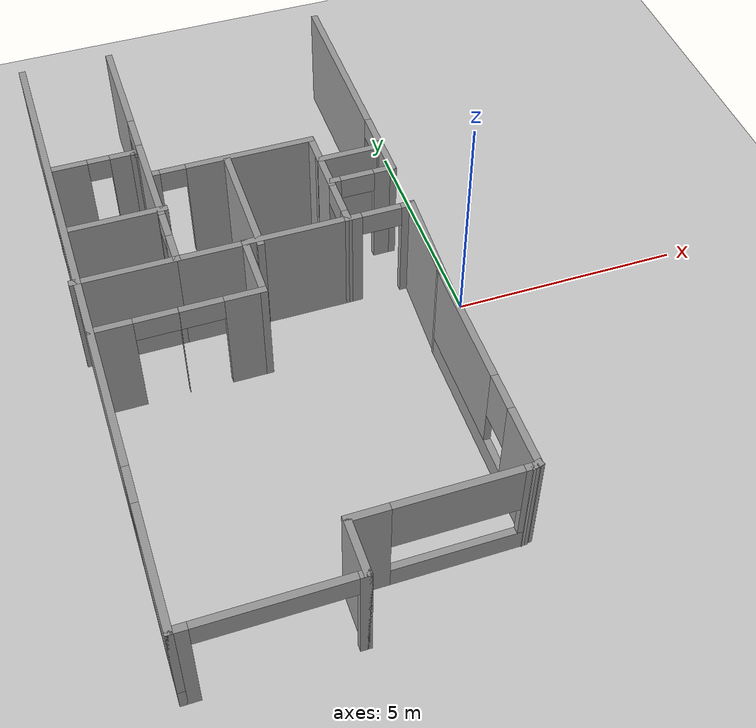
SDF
<sdf version="1.7">
 <world name="default">
  <model name="ground_plane">
   <static>1</static>
   <link name="link">
    <collision name="collision">
     <geometry><plane><normal>0 0 1</normal><size>100 100</size></plane></geometry>
     <surface>
      <contact><collide_bitmask>65535</collide_bitmask></contact>
      <friction><ode><mu>100</mu><mu2>50</mu2></ode></friction>
     </surface>
    </collision>
    <visual name="visual">
     <cast_shadows>0</cast_shadows>
     <geometry><plane><normal>0 0 1</normal><size>100 100</size></plane></geometry>
     <material>
      <script><uri>file://media/materials/scripts/gazebo.material</uri><name>Gazebo/Grey</name></script>
     </material>
    </visual>
   </link>
  </model>
  <model name="Floorplan7">
   <pose>0.685617 0.398656 0 0 -0 0</pose>
   <link name="Wall_10">
    <collision name="Wall_10_Collision">
     <geometry><box><size>1.25 0.15 2.5</size></box></geometry>
     <pose>0 0 1.25 0 -0 0</pose>
    </collision>
    <visual name="Wall_10_Visual">
     <pose>0 0 1.25 0 -0 0</pose>
     <geometry><box><size>1.25 0.15 2.5</size></box></geometry>
     <material>
      <script><uri>file://media/materials/scripts/gazebo.material</uri><name>Gazebo/Grey</name></script>
      <ambient>1 1 1 1</ambient>
     </material>
     <meta><layer>0</layer></meta>
    </visual>
    <pose>-5.20802 -6.875 0 0 -0 1.5708</pose>
   </link>
   <link name="Wall_11">
    <pose>-3.53302 -6.325 0 0 -0 0</pose>
    <visual name="Wall_11_Visual_0">
     <pose>-1.31856 0 1.25 0 -0 0</pose>
     <geometry><box><size>0.862879 0.15 2.5</size></box></geometry>
     <material>
      <script><uri>file://media/materials/scripts/gazebo.material</uri><name>Gazebo/Grey</name></script>
      <ambient>1 1 1 1</ambient>
     </material>
     <meta><layer>0</layer></meta>
    </visual>
    <collision name="Wall_11_Collision_0">
     <geometry><box><size>0.862879 0.15 2.5</size></box></geometry>
     <pose>-1.31856 0 1.25 0 -0 0</pose>
    </collision>
    <visual name="Wall_11_Visual_1">
     <pose>0.43144 0 0.25 0 -0 0</pose>
     <geometry><box><size>2.63712 0.15 0.5</size></box></geometry>
     <material>
      <script><uri>file://media/materials/scripts/gazebo.material</uri><name>Gazebo/Grey</name></script>
      <ambient>1 1 1 1</ambient>
     </material>
     <meta><layer>0</layer></meta>
    </visual>
    <collision name="Wall_11_Collision_1">
     <geometry><box><size>2.63712 0.15 0.5</size></box></geometry>
     <pose>0.43144 0 0.25 0 -0 0</pose>
    </collision>
    <visual name="Wall_11_Visual_2">
     <pose>1.67426 0 1.5 0 -0 0</pose>
     <geometry><box><size>0.151472 0.15 2</size></box></geometry>
     <material>
      <script><uri>file://media/materials/scripts/gazebo.material</uri><name>Gazebo/Grey</name></script>
      <ambient>1 1 1 1</ambient>
     </material>
     <meta><layer>0</layer></meta>
    </visual>
    <collision name="Wall_11_Collision_2">
     <geometry><box><size>0.151472 0.15 2</size></box></geometry>
     <pose>1.67426 0 1.5 0 -0 0</pose>
    </collision>
    <visual name="Wall_11_Visual_3">
     <pose>0.355704 0 1.9 0 -0 0</pose>
     <geometry><box><size>2.48565 0.15 1.2</size></box></geometry>
     <material>
      <script><uri>file://media/materials/scripts/gazebo.material</uri><name>Gazebo/Grey</name></script>
      <ambient>1 1 1 1</ambient>
     </material>
     <meta><layer>0</layer></meta>
    </visual>
    <collision name="Wall_11_Collision_3">
     <geometry><box><size>2.48565 0.15 1.2</size></box></geometry>
     <pose>0.355704 0 1.9 0 -0 0</pose>
    </collision>
   </link>
   <link name="Wall_12">
    <collision name="Wall_12_Collision">
     <geometry><box><size>0.25 0.15 2.5</size></box></geometry>
     <pose>0 0 1.25 0 -0 0</pose>
    </collision>
    <visual name="Wall_12_Visual">
     <pose>0 0 1.25 0 -0 0</pose>
     <geometry><box><size>0.25 0.15 2.5</size></box></geometry>
     <material>
      <script><uri>file://media/materials/scripts/gazebo.material</uri><name>Gazebo/Grey</name></script>
      <ambient>1 1 1 1</ambient>
     </material>
     <meta><layer>0</layer></meta>
    </visual>
    <pose>-1.80802 -6.325 0 0 -0 0</pose>
   </link>
   <link name="Wall_13">
    <collision name="Wall_13_Collision">
     <geometry><box><size>0.25 0.15 2.5</size></box></geometry>
     <pose>0 0 1.25 0 -0 0</pose>
    </collision>
    <visual name="Wall_13_Visual">
     <pose>0 0 1.25 0 -0 0</pose>
     <geometry><box><size>0.25 0.15 2.5</size></box></geometry>
     <material>
      <script><uri>file://media/materials/scripts/gazebo.material</uri><name>Gazebo/Grey</name></script>
      <ambient>1 1 1 1</ambient>
     </material>
     <meta><layer>0</layer></meta>
    </visual>
    <pose>-1.70972 -6.31206 0 0 -0 0.261799</pose>
   </link>
   <link name="Wall_14">
    <pose>-1.65681 -3.87627 0 0 -0 1.56889</pose>
    <visual name="Wall_14_Visual_0">
     <pose>-1.82183 0 1.25 0 -0 0</pose>
     <geometry><box><size>1.35207 0.15 2.5</size></box></geometry>
     <material>
      <script><uri>file://media/materials/scripts/gazebo.material</uri><name>Gazebo/Grey</name></script>
      <ambient>1 1 1 1</ambient>
     </material>
     <meta><layer>0</layer></meta>
    </visual>
    <collision name="Wall_14_Collision_0">
     <geometry><box><size>1.35207 0.15 2.5</size></box></geometry>
     <pose>-1.82183 0 1.25 0 -0 0</pose>
    </collision>
    <visual name="Wall_14_Visual_1">
     <pose>0.676036 0 0.25 0 -0 0</pose>
     <geometry><box><size>3.64367 0.15 0.5</size></box></geometry>
     <material>
      <script><uri>file://media/materials/scripts/gazebo.material</uri><name>Gazebo/Grey</name></script>
      <ambient>1 1 1 1</ambient>
     </material>
     <meta><layer>0</layer></meta>
    </visual>
    <collision name="Wall_14_Collision_1">
     <geometry><box><size>3.64367 0.15 0.5</size></box></geometry>
     <pose>0.676036 0 0.25 0 -0 0</pose>
    </collision>
    <visual name="Wall_14_Visual_2">
     <pose>1.07604 0 1.5 0 -0 0</pose>
     <geometry><box><size>2.84367 0.15 2</size></box></geometry>
     <material>
      <script><uri>file://media/materials/scripts/gazebo.material</uri><name>Gazebo/Grey</name></script>
      <ambient>1 1 1 1</ambient>
     </material>
     <meta><layer>0</layer></meta>
    </visual>
    <collision name="Wall_14_Collision_2">
     <geometry><box><size>2.84367 0.15 2</size></box></geometry>
     <pose>1.07604 0 1.5 0 -0 0</pose>
    </collision>
    <visual name="Wall_14_Visual_3">
     <pose>-0.745799 0 1.9 0 -0 0</pose>
     <geometry><box><size>0.8 0.15 1.2</size></box></geometry>
     <material>
      <script><uri>file://media/materials/scripts/gazebo.material</uri><name>Gazebo/Grey</name></script>
      <ambient>1 1 1 1</ambient>
     </material>
     <meta><layer>0</layer></meta>
    </visual>
    <collision name="Wall_14_Collision_3">
     <geometry><box><size>0.8 0.15 1.2</size></box></geometry>
     <pose>-0.745799 0 1.9 0 -0 0</pose>
    </collision>
   </link>
   <link name="Wall_18">
    <pose>-6.54918 3.98735 0 0 -0 -1.5708</pose>
    <visual name="Wall_18_Visual_0">
     <pose>-2.2619 0 1.25 0 -0 0</pose>
     <geometry><box><size>2.47621 0.15 2.5</size></box></geometry>
     <material>
      <script><uri>file://media/materials/scripts/gazebo.material</uri><name>Gazebo/Grey</name></script>
      <ambient>1 1 1 1</ambient>
     </material>
     <meta><layer>0</layer></meta>
    </visual>
    <collision name="Wall_18_Collision_0">
     <geometry><box><size>2.47621 0.15 2.5</size></box></geometry>
     <pose>-2.2619 0 1.25 0 -0 0</pose>
    </collision>
    <visual name="Wall_18_Visual_1">
     <pose>0.956775 0 1.25 0 -0 0</pose>
     <geometry><box><size>2.26902 0.15 2.5</size></box></geometry>
     <material>
      <script><uri>file://media/materials/scripts/gazebo.material</uri><name>Gazebo/Grey</name></script>
      <ambient>1 1 1 1</ambient>
     </material>
     <meta><layer>0</layer></meta>
    </visual>
    <collision name="Wall_18_Collision_1">
     <geometry><box><size>2.26902 0.15 2.5</size></box></geometry>
     <pose>0.956775 0 1.25 0 -0 0</pose>
    </collision>
    <visual name="Wall_18_Visual_2">
     <pose>3.11753 0 1.25 0 -0 0</pose>
     <geometry><box><size>0.764934 0.15 2.5</size></box></geometry>
     <material>
      <script><uri>file://media/materials/scripts/gazebo.material</uri><name>Gazebo/Grey</name></script>
      <ambient>1 1 1 1</ambient>
     </material>
     <meta><layer>0</layer></meta>
    </visual>
    <collision name="Wall_18_Collision_2">
     <geometry><box><size>0.764934 0.15 2.5</size></box></geometry>
     <pose>3.11753 0 1.25 0 -0 0</pose>
    </collision>
    <visual name="Wall_18_Visual_3">
     <pose>-0.600765 0 2.25 0 -0 0</pose>
     <geometry><box><size>0.846059 0.15 0.5</size></box></geometry>
     <material>
      <script><uri>file://media/materials/scripts/gazebo.material</uri><name>Gazebo/Grey</name></script>
      <ambient>1 1 1 1</ambient>
     </material>
     <meta><layer>0</layer></meta>
    </visual>
    <collision name="Wall_18_Collision_3">
     <geometry><box><size>0.846059 0.15 0.5</size></box></geometry>
     <pose>-0.600765 0 2.25 0 -0 0</pose>
    </collision>
    <visual name="Wall_18_Visual_4">
     <pose>2.41317 0 2.25 0 -0 0</pose>
     <geometry><box><size>0.643781 0.15 0.5</size></box></geometry>
     <material>
      <script><uri>file://media/materials/scripts/gazebo.material</uri><name>Gazebo/Grey</name></script>
      <ambient>1 1 1 1</ambient>
     </material>
     <meta><layer>0</layer></meta>
    </visual>
    <collision name="Wall_18_Collision_4">
     <geometry><box><size>0.643781 0.15 0.5</size></box></geometry>
     <pose>2.41317 0 2.25 0 -0 0</pose>
    </collision>
   </link>
   <link name="Wall_19">
    <collision name="Wall_19_Collision">
     <geometry><box><size>2.25 0.15 2.5</size></box></geometry>
     <pose>0 0 1.25 0 -0 0</pose>
    </collision>
    <visual name="Wall_19_Visual">
     <pose>0 0 1.25 0 -0 0</pose>
     <geometry><box><size>2.25 0.15 2.5</size></box></geometry>
     <material>
      <script><uri>file://media/materials/scripts/gazebo.material</uri><name>Gazebo/Grey</name></script>
      <ambient>1 1 1 1</ambient>
     </material>
     <meta><layer>0</layer></meta>
    </visual>
    <pose>-7.59918 0.562349 0 0 -0 3.14159</pose>
   </link>
   <link name="Wall_20">
    <collision name="Wall_20_Collision">
     <geometry><box><size>0.15 0.15 2.5</size></box></geometry>
     <pose>0 0 1.25 0 -0 0</pose>
    </collision>
    <visual name="Wall_20_Visual">
     <pose>0 0 1.25 0 -0 0</pose>
     <geometry><box><size>0.15 0.15 2.5</size></box></geometry>
     <material>
      <script><uri>file://media/materials/scripts/gazebo.material</uri><name>Gazebo/Grey</name></script>
      <ambient>1 1 1 1</ambient>
     </material>
     <meta><layer>0</layer></meta>
    </visual>
    <pose>-8.64918 0.562349 0 0 -0 0</pose>
   </link>
   <link name="Wall_22">
    <pose>-6.83525 -0.793988 0 0 -0 0</pose>
    <visual name="Wall_22_Visual_0">
     <pose>-1.33924 0 1.25 0 -0 0</pose>
     <geometry><box><size>0.881865 0.15 2.5</size></box></geometry>
     <material>
      <script><uri>file://media/materials/scripts/gazebo.material</uri><name>Gazebo/Grey</name></script>
      <ambient>1 1 1 1</ambient>
     </material>
     <meta><layer>0</layer></meta>
    </visual>
    <collision name="Wall_22_Collision_0">
     <geometry><box><size>0.881865 0.15 2.5</size></box></geometry>
     <pose>-1.33924 0 1.25 0 -0 0</pose>
    </collision>
    <visual name="Wall_22_Visual_1">
     <pose>0.003448 0 1.25 0 -0 0</pose>
     <geometry><box><size>0.003508 0.15 2.5</size></box></geometry>
     <material>
      <script><uri>file://media/materials/scripts/gazebo.material</uri><name>Gazebo/Grey</name></script>
      <ambient>1 1 1 1</ambient>
     </material>
     <meta><layer>0</layer></meta>
    </visual>
    <collision name="Wall_22_Collision_1">
     <geometry><box><size>0.003508 0.15 2.5</size></box></geometry>
     <pose>0.003448 0 1.25 0 -0 0</pose>
    </collision>
    <visual name="Wall_22_Visual_2">
     <pose>1.34269 0 1.25 0 -0 0</pose>
     <geometry><box><size>0.874968 0.15 2.5</size></box></geometry>
     <material>
      <script><uri>file://media/materials/scripts/gazebo.material</uri><name>Gazebo/Grey</name></script>
      <ambient>1 1 1 1</ambient>
     </material>
     <meta><layer>0</layer></meta>
    </visual>
    <collision name="Wall_22_Collision_2">
     <geometry><box><size>0.874968 0.15 2.5</size></box></geometry>
     <pose>1.34269 0 1.25 0 -0 0</pose>
    </collision>
    <visual name="Wall_22_Visual_3">
     <pose>-0.448306 0 2.25 0 -0 0</pose>
     <geometry><box><size>0.9 0.15 0.5</size></box></geometry>
     <material>
      <script><uri>file://media/materials/scripts/gazebo.material</uri><name>Gazebo/Grey</name></script>
      <ambient>1 1 1 1</ambient>
     </material>
     <meta><layer>0</layer></meta>
    </visual>
    <collision name="Wall_22_Collision_3">
     <geometry><box><size>0.9 0.15 0.5</size></box></geometry>
     <pose>-0.448306 0 2.25 0 -0 0</pose>
    </collision>
    <visual name="Wall_22_Visual_4">
     <pose>0.455202 0 2.25 0 -0 0</pose>
     <geometry><box><size>0.9 0.15 0.5</size></box></geometry>
     <material>
      <script><uri>file://media/materials/scripts/gazebo.material</uri><name>Gazebo/Grey</name></script>
      <ambient>1 1 1 1</ambient>
     </material>
     <meta><layer>0</layer></meta>
    </visual>
    <collision name="Wall_22_Collision_4">
     <geometry><box><size>0.9 0.15 0.5</size></box></geometry>
     <pose>0.455202 0 2.25 0 -0 0</pose>
    </collision>
   </link>
   <link name="Wall_23">
    <collision name="Wall_23_Collision">
     <geometry><box><size>1.5 0.15 2.5</size></box></geometry>
     <pose>0 0 1.25 0 -0 0</pose>
    </collision>
    <visual name="Wall_23_Visual">
     <pose>0 0 1.25 0 -0 0</pose>
     <geometry><box><size>1.5 0.15 2.5</size></box></geometry>
     <material>
      <script><uri>file://media/materials/scripts/gazebo.material</uri><name>Gazebo/Grey</name></script>
      <ambient>1 1 1 1</ambient>
     </material>
     <meta><layer>0</layer></meta>
    </visual>
    <pose>-5.13008 -0.118989 0 0 -0 1.5708</pose>
   </link>
   <link name="Wall_24">
    <collision name="Wall_24_Collision">
     <geometry><box><size>1.56911 0.15 2.5</size></box></geometry>
     <pose>0 0 1.25 0 -0 0</pose>
    </collision>
    <visual name="Wall_24_Visual">
     <pose>0 0 1.25 0 -0 0</pose>
     <geometry><box><size>1.56911 0.15 2.5</size></box></geometry>
     <material>
      <script><uri>file://media/materials/scripts/gazebo.material</uri><name>Gazebo/Grey</name></script>
      <ambient>1 1 1 1</ambient>
     </material>
     <meta><layer>0</layer></meta>
    </visual>
    <pose>-5.83963 0.55918 0 0 -0 3.13713</pose>
   </link>
   <link name="Wall_25">
    <collision name="Wall_25_Collision">
     <geometry><box><size>0.15 0.15 2.5</size></box></geometry>
     <pose>0 0 1.25 0 -0 0</pose>
    </collision>
    <visual name="Wall_25_Visual">
     <pose>0 0 1.25 0 -0 0</pose>
     <geometry><box><size>0.15 0.15 2.5</size></box></geometry>
     <material>
      <script><uri>file://media/materials/scripts/gazebo.material</uri><name>Gazebo/Grey</name></script>
      <ambient>1 1 1 1</ambient>
     </material>
     <meta><layer>0</layer></meta>
    </visual>
    <pose>-6.54918 0.562349 0 0 -0 0</pose>
   </link>
   <link name="Wall_27">
    <collision name="Wall_27_Collision">
     <geometry><box><size>2.25 0.15 2.5</size></box></geometry>
     <pose>0 0 1.25 0 -0 0</pose>
    </collision>
    <visual name="Wall_27_Visual">
     <pose>0 0 1.25 0 -0 0</pose>
     <geometry><box><size>2.25 0.15 2.5</size></box></geometry>
     <material>
      <script><uri>file://media/materials/scripts/gazebo.material</uri><name>Gazebo/Grey</name></script>
      <ambient>1 1 1 1</ambient>
     </material>
     <meta><layer>0</layer></meta>
    </visual>
    <pose>-7.51053 2.06214 0 0 -0 0</pose>
   </link>
   <link name="Wall_28">
    <collision name="Wall_28_Collision">
     <geometry><box><size>0.15 0.15 2.5</size></box></geometry>
     <pose>0 0 1.25 0 -0 0</pose>
    </collision>
    <visual name="Wall_28_Visual">
     <pose>0 0 1.25 0 -0 0</pose>
     <geometry><box><size>0.15 0.15 2.5</size></box></geometry>
     <material>
      <script><uri>file://media/materials/scripts/gazebo.material</uri><name>Gazebo/Grey</name></script>
      <ambient>1 1 1 1</ambient>
     </material>
     <meta><layer>0</layer></meta>
    </visual>
    <pose>-6.46053 2.06214 0 0 -0 0</pose>
   </link>
   <link name="Wall_30">
    <pose>-7.63553 3.97293 0 0 -0 0</pose>
    <visual name="Wall_30_Visual_0">
     <pose>-0.538897 0 1.25 0 -0 0</pose>
     <geometry><box><size>0.922206 0.15 2.5</size></box></geometry>
     <material>
      <script><uri>file://media/materials/scripts/gazebo.material</uri><name>Gazebo/Grey</name></script>
      <ambient>1 1 1 1</ambient>
     </material>
     <meta><layer>0</layer></meta>
    </visual>
    <collision name="Wall_30_Collision_0">
     <geometry><box><size>0.922206 0.15 2.5</size></box></geometry>
     <pose>-0.538897 0 1.25 0 -0 0</pose>
    </collision>
    <visual name="Wall_30_Visual_1">
     <pose>0.702083 0 1.25 0 -0 0</pose>
     <geometry><box><size>0.595835 0.15 2.5</size></box></geometry>
     <material>
      <script><uri>file://media/materials/scripts/gazebo.material</uri><name>Gazebo/Grey</name></script>
      <ambient>1 1 1 1</ambient>
     </material>
     <meta><layer>0</layer></meta>
    </visual>
    <collision name="Wall_30_Collision_1">
     <geometry><box><size>0.595835 0.15 2.5</size></box></geometry>
     <pose>0.702083 0 1.25 0 -0 0</pose>
    </collision>
    <visual name="Wall_30_Visual_2">
     <pose>0.163186 0 2.25 0 -0 0</pose>
     <geometry><box><size>0.481959 0.15 0.5</size></box></geometry>
     <material>
      <script><uri>file://media/materials/scripts/gazebo.material</uri><name>Gazebo/Grey</name></script>
      <ambient>1 1 1 1</ambient>
     </material>
     <meta><layer>0</layer></meta>
    </visual>
    <collision name="Wall_30_Collision_2">
     <geometry><box><size>0.481959 0.15 0.5</size></box></geometry>
     <pose>0.163186 0 2.25 0 -0 0</pose>
    </collision>
   </link>
   <link name="Wall_31">
    <collision name="Wall_31_Collision">
     <geometry><box><size>0.15 0.15 2.5</size></box></geometry>
     <pose>0 0 1.25 0 -0 0</pose>
    </collision>
    <visual name="Wall_31_Visual">
     <pose>0 0 1.25 0 -0 0</pose>
     <geometry><box><size>0.15 0.15 2.5</size></box></geometry>
     <material>
      <script><uri>file://media/materials/scripts/gazebo.material</uri><name>Gazebo/Grey</name></script>
      <ambient>1 1 1 1</ambient>
     </material>
     <meta><layer>0</layer></meta>
    </visual>
    <pose>-6.71053 3.97293 0 0 -0 0</pose>
   </link>
   <link name="Wall_33">
    <pose>-4.7387 3.17612 0 0 -0 0</pose>
    <visual name="Wall_33_Visual_0">
     <pose>-1.71604 0 1.25 0 -0 0</pose>
     <geometry><box><size>0.287751 0.15 2.5</size></box></geometry>
     <material>
      <script><uri>file://media/materials/scripts/gazebo.material</uri><name>Gazebo/Grey</name></script>
      <ambient>1 1 1 1</ambient>
     </material>
     <meta><layer>0</layer></meta>
    </visual>
    <collision name="Wall_33_Collision_0">
     <geometry><box><size>0.287751 0.15 2.5</size></box></geometry>
     <pose>-1.71604 0 1.25 0 -0 0</pose>
    </collision>
    <visual name="Wall_33_Visual_1">
     <pose>0.42531 0 1.25 0 -0 0</pose>
     <geometry><box><size>2.86921 0.15 2.5</size></box></geometry>
     <material>
      <script><uri>file://media/materials/scripts/gazebo.material</uri><name>Gazebo/Grey</name></script>
      <ambient>1 1 1 1</ambient>
     </material>
     <meta><layer>0</layer></meta>
    </visual>
    <collision name="Wall_33_Collision_1">
     <geometry><box><size>2.86921 0.15 2.5</size></box></geometry>
     <pose>0.42531 0 1.25 0 -0 0</pose>
    </collision>
    <visual name="Wall_33_Visual_2">
     <pose>-1.29073 0 2.25 0 -0 0</pose>
     <geometry><box><size>0.56287 0.15 0.5</size></box></geometry>
     <material>
      <script><uri>file://media/materials/scripts/gazebo.material</uri><name>Gazebo/Grey</name></script>
      <ambient>1 1 1 1</ambient>
     </material>
     <meta><layer>0</layer></meta>
    </visual>
    <collision name="Wall_33_Collision_2">
     <geometry><box><size>0.56287 0.15 0.5</size></box></geometry>
     <pose>-1.29073 0 2.25 0 -0 0</pose>
    </collision>
   </link>
   <link name="Wall_34">
    <pose>-2.94373 1.87613 0 0 -0 -1.5708</pose>
    <visual name="Wall_34_Visual_0">
     <pose>-0.559246 0 1.25 0 -0 0</pose>
     <geometry><box><size>1.63151 0.15 2.5</size></box></geometry>
     <material>
      <script><uri>file://media/materials/scripts/gazebo.material</uri><name>Gazebo/Grey</name></script>
      <ambient>1 1 1 1</ambient>
     </material>
     <meta><layer>0</layer></meta>
    </visual>
    <collision name="Wall_34_Collision_0">
     <geometry><box><size>1.63151 0.15 2.5</size></box></geometry>
     <pose>-0.559246 0 1.25 0 -0 0</pose>
    </collision>
    <visual name="Wall_34_Visual_1">
     <pose>1.21856 0 1.25 0 -0 0</pose>
     <geometry><box><size>0.312889 0.15 2.5</size></box></geometry>
     <material>
      <script><uri>file://media/materials/scripts/gazebo.material</uri><name>Gazebo/Grey</name></script>
      <ambient>1 1 1 1</ambient>
     </material>
     <meta><layer>0</layer></meta>
    </visual>
    <collision name="Wall_34_Collision_1">
     <geometry><box><size>0.312889 0.15 2.5</size></box></geometry>
     <pose>1.21856 0 1.25 0 -0 0</pose>
    </collision>
    <visual name="Wall_34_Visual_2">
     <pose>0.659309 0 2.25 0 -0 0</pose>
     <geometry><box><size>0.805604 0.15 0.5</size></box></geometry>
     <material>
      <script><uri>file://media/materials/scripts/gazebo.material</uri><name>Gazebo/Grey</name></script>
      <ambient>1 1 1 1</ambient>
     </material>
     <meta><layer>0</layer></meta>
    </visual>
    <collision name="Wall_34_Collision_2">
     <geometry><box><size>0.805604 0.15 0.5</size></box></geometry>
     <pose>0.659309 0 2.25 0 -0 0</pose>
    </collision>
   </link>
   <link name="Wall_35">
    <collision name="Wall_35_Collision">
     <geometry><box><size>2.33635 0.15 2.5</size></box></geometry>
     <pose>0 0 1.25 0 -0 0</pose>
    </collision>
    <visual name="Wall_35_Visual">
     <pose>0 0 1.25 0 -0 0</pose>
     <geometry><box><size>2.33635 0.15 2.5</size></box></geometry>
     <material>
      <script><uri>file://media/materials/scripts/gazebo.material</uri><name>Gazebo/Grey</name></script>
      <ambient>1 1 1 1</ambient>
     </material>
     <meta><layer>0</layer></meta>
    </visual>
    <pose>-4.03691 0.576125 0 0 -0 3.14159</pose>
   </link>
   <link name="Wall_36">
    <collision name="Wall_36_Collision">
     <geometry><box><size>0.15 0.15 2.5</size></box></geometry>
     <pose>0 0 1.25 0 -0 0</pose>
    </collision>
    <visual name="Wall_36_Visual">
     <pose>0 0 1.25 0 -0 0</pose>
     <geometry><box><size>0.15 0.15 2.5</size></box></geometry>
     <material>
      <script><uri>file://media/materials/scripts/gazebo.material</uri><name>Gazebo/Grey</name></script>
      <ambient>1 1 1 1</ambient>
     </material>
     <meta><layer>0</layer></meta>
    </visual>
    <pose>-5.13008 0.556011 0 0 -0 0</pose>
   </link>
   <link name="Wall_38">
    <collision name="Wall_38_Collision">
     <geometry><box><size>2.75 0.15 2.5</size></box></geometry>
     <pose>0 0 1.25 0 -0 0</pose>
    </collision>
    <visual name="Wall_38_Visual">
     <pose>0 0 1.25 0 -0 0</pose>
     <geometry><box><size>2.75 0.15 2.5</size></box></geometry>
     <material>
      <script><uri>file://media/materials/scripts/gazebo.material</uri><name>Gazebo/Grey</name></script>
      <ambient>1 1 1 1</ambient>
     </material>
     <meta><layer>0</layer></meta>
    </visual>
    <pose>-4.83903 1.77689 0 0 -0 1.5708</pose>
   </link>
   <link name="Wall_39">
    <collision name="Wall_39_Collision">
     <geometry><box><size>0.15 0.15 2.5</size></box></geometry>
     <pose>0 0 1.25 0 -0 0</pose>
    </collision>
    <visual name="Wall_39_Visual">
     <pose>0 0 1.25 0 -0 0</pose>
     <geometry><box><size>0.15 0.15 2.5</size></box></geometry>
     <material>
      <script><uri>file://media/materials/scripts/gazebo.material</uri><name>Gazebo/Grey</name></script>
      <ambient>1 1 1 1</ambient>
     </material>
     <meta><layer>0</layer></meta>
    </visual>
    <pose>-4.83903 3.07689 0 0 -0 0</pose>
   </link>
   <link name="Wall_41">
    <pose>-2.23312 1.76416 0 0 -0 0</pose>
    <visual name="Wall_41_Visual_0">
     <pose>-0.620342 0 1.25 0 -0 0</pose>
     <geometry><box><size>0.259315 0.15 2.5</size></box></geometry>
     <material>
      <script><uri>file://media/materials/scripts/gazebo.material</uri><name>Gazebo/Grey</name></script>
      <ambient>1 1 1 1</ambient>
     </material>
     <meta><layer>0</layer></meta>
    </visual>
    <collision name="Wall_41_Collision_0">
     <geometry><box><size>0.259315 0.15 2.5</size></box></geometry>
     <pose>-0.620342 0 1.25 0 -0 0</pose>
    </collision>
    <visual name="Wall_41_Visual_1">
     <pose>0.498746 0 1.25 0 -0 0</pose>
     <geometry><box><size>0.502507 0.15 2.5</size></box></geometry>
     <material>
      <script><uri>file://media/materials/scripts/gazebo.material</uri><name>Gazebo/Grey</name></script>
      <ambient>1 1 1 1</ambient>
     </material>
     <meta><layer>0</layer></meta>
    </visual>
    <collision name="Wall_41_Collision_1">
     <geometry><box><size>0.502507 0.15 2.5</size></box></geometry>
     <pose>0.498746 0 1.25 0 -0 0</pose>
    </collision>
    <visual name="Wall_41_Visual_2">
     <pose>-0.121596 0 2.25 0 -0 0</pose>
     <geometry><box><size>0.738178 0.15 0.5</size></box></geometry>
     <material>
      <script><uri>file://media/materials/scripts/gazebo.material</uri><name>Gazebo/Grey</name></script>
      <ambient>1 1 1 1</ambient>
     </material>
     <meta><layer>0</layer></meta>
    </visual>
    <collision name="Wall_41_Collision_2">
     <geometry><box><size>0.738178 0.15 0.5</size></box></geometry>
     <pose>-0.121596 0 2.25 0 -0 0</pose>
    </collision>
   </link>
   <link name="Wall_42">
    <pose>-1.55812 4.56416 0 0 -0 1.5708</pose>
    <visual name="Wall_42_Visual_0">
     <pose>-2.38547 0 1.25 0 -0 0</pose>
     <geometry><box><size>0.979068 0.15 2.5</size></box></geometry>
     <material>
      <script><uri>file://media/materials/scripts/gazebo.material</uri><name>Gazebo/Grey</name></script>
      <ambient>1 1 1 1</ambient>
     </material>
     <meta><layer>0</layer></meta>
    </visual>
    <collision name="Wall_42_Collision_0">
     <geometry><box><size>0.979068 0.15 2.5</size></box></geometry>
     <pose>-2.38547 0 1.25 0 -0 0</pose>
    </collision>
    <visual name="Wall_42_Visual_1">
     <pose>0.858623 0 1.25 0 -0 0</pose>
     <geometry><box><size>4.03275 0.15 2.5</size></box></geometry>
     <material>
      <script><uri>file://media/materials/scripts/gazebo.material</uri><name>Gazebo/Grey</name></script>
      <ambient>1 1 1 1</ambient>
     </material>
     <meta><layer>0</layer></meta>
    </visual>
    <collision name="Wall_42_Collision_1">
     <geometry><box><size>4.03275 0.15 2.5</size></box></geometry>
     <pose>0.858623 0 1.25 0 -0 0</pose>
    </collision>
    <visual name="Wall_42_Visual_2">
     <pose>-1.52684 0 2.25 0 -0 0</pose>
     <geometry><box><size>0.738178 0.15 0.5</size></box></geometry>
     <material>
      <script><uri>file://media/materials/scripts/gazebo.material</uri><name>Gazebo/Grey</name></script>
      <ambient>1 1 1 1</ambient>
     </material>
     <meta><layer>0</layer></meta>
    </visual>
    <collision name="Wall_42_Collision_2">
     <geometry><box><size>0.738178 0.15 0.5</size></box></geometry>
     <pose>-1.52684 0 2.25 0 -0 0</pose>
    </collision>
   </link>
   <link name="Wall_45">
    <collision name="Wall_45_Collision">
     <geometry><box><size>1.5 0.15 2.5</size></box></geometry>
     <pose>0 0 1.25 0 -0 0</pose>
    </collision>
    <visual name="Wall_45_Visual">
     <pose>0 0 1.25 0 -0 0</pose>
     <geometry><box><size>1.5 0.15 2.5</size></box></geometry>
     <material>
      <script><uri>file://media/materials/scripts/gazebo.material</uri><name>Gazebo/Grey</name></script>
      <ambient>1 1 1 1</ambient>
     </material>
     <meta><layer>0</layer></meta>
    </visual>
    <pose>-2.27785 2.49435 0 0 -0 0</pose>
   </link>
   <link name="Wall_46">
    <collision name="Wall_46_Collision">
     <geometry><box><size>0.15 0.15 2.5</size></box></geometry>
     <pose>0 0 1.25 0 -0 0</pose>
    </collision>
    <visual name="Wall_46_Visual">
     <pose>0 0 1.25 0 -0 0</pose>
     <geometry><box><size>0.15 0.15 2.5</size></box></geometry>
     <material>
      <script><uri>file://media/materials/scripts/gazebo.material</uri><name>Gazebo/Grey</name></script>
      <ambient>1 1 1 1</ambient>
     </material>
     <meta><layer>0</layer></meta>
    </visual>
    <pose>-1.60285 2.49435 0 0 -0 0</pose>
   </link>
   <link name="Wall_51">
    <pose>-2.251 0.578342 0 0 -0 0.0032</pose>
    <visual name="Wall_51_Visual_0">
     <pose>-0.57981 0 1.25 0 -0 0</pose>
     <geometry><box><size>0.375855 0.15 2.5</size></box></geometry>
     <material>
      <script><uri>file://media/materials/scripts/gazebo.material</uri><name>Gazebo/Grey</name></script>
      <ambient>1 1 1 1</ambient>
     </material>
     <meta><layer>0</layer></meta>
    </visual>
    <collision name="Wall_51_Collision_0">
     <geometry><box><size>0.375855 0.15 2.5</size></box></geometry>
     <pose>-0.57981 0 1.25 0 -0 0</pose>
    </collision>
    <visual name="Wall_51_Visual_1">
     <pose>0.6177 0 1.25 0 -0 0</pose>
     <geometry><box><size>0.300075 0.15 2.5</size></box></geometry>
     <material>
      <script><uri>file://media/materials/scripts/gazebo.material</uri><name>Gazebo/Grey</name></script>
      <ambient>1 1 1 1</ambient>
     </material>
     <meta><layer>0</layer></meta>
    </visual>
    <collision name="Wall_51_Collision_1">
     <geometry><box><size>0.300075 0.15 2.5</size></box></geometry>
     <pose>0.6177 0 1.25 0 -0 0</pose>
    </collision>
    <visual name="Wall_51_Visual_2">
     <pose>0.03789 0 2.25 0 -0 0</pose>
     <geometry><box><size>0.859545 0.15 0.5</size></box></geometry>
     <material>
      <script><uri>file://media/materials/scripts/gazebo.material</uri><name>Gazebo/Grey</name></script>
      <ambient>1 1 1 1</ambient>
     </material>
     <meta><layer>0</layer></meta>
    </visual>
    <collision name="Wall_51_Collision_2">
     <geometry><box><size>0.859545 0.15 0.5</size></box></geometry>
     <pose>0.03789 0 2.25 0 -0 0</pose>
    </collision>
   </link>
   <link name="Wall_52">
    <collision name="Wall_52_Collision">
     <geometry><box><size>2.18615 0.15 2.5</size></box></geometry>
     <pose>0 0 1.25 0 -0 0</pose>
    </collision>
    <visual name="Wall_52_Visual">
     <pose>0 0 1.25 0 -0 0</pose>
     <geometry><box><size>2.18615 0.15 2.5</size></box></geometry>
     <material>
      <script><uri>file://media/materials/scripts/gazebo.material</uri><name>Gazebo/Grey</name></script>
      <ambient>1 1 1 1</ambient>
     </material>
     <meta><layer>0</layer></meta>
    </visual>
    <pose>-1.59193 -0.432002 0 0 -0 -1.61694</pose>
   </link>
   <link name="Wall_53">
    <collision name="Wall_53_Collision">
     <geometry><box><size>0.15 0.15 2.5</size></box></geometry>
     <pose>0 0 1.25 0 -0 0</pose>
    </collision>
    <visual name="Wall_53_Visual">
     <pose>0 0 1.25 0 -0 0</pose>
     <geometry><box><size>0.15 0.15 2.5</size></box></geometry>
     <material>
      <script><uri>file://media/materials/scripts/gazebo.material</uri><name>Gazebo/Grey</name></script>
      <ambient>1 1 1 1</ambient>
     </material>
     <meta><layer>0</layer></meta>
    </visual>
    <pose>-1.65219 -1.45343 0 0 -0 0</pose>
   </link>
   <link name="Wall_8">
    <pose>-8.55802 0 0 0 -0 -1.5708</pose>
    <visual name="Wall_8_Visual_0">
     <pose>-1.71303 0 1.25 0 -0 0</pose>
     <geometry><box><size>11.5739 0.15 2.5</size></box></geometry>
     <material>
      <script><uri>file://media/materials/scripts/gazebo.material</uri><name>Gazebo/Grey</name></script>
      <ambient>1 1 1 1</ambient>
     </material>
     <meta><layer>0</layer></meta>
    </visual>
    <collision name="Wall_8_Collision_0">
     <geometry><box><size>11.5739 0.15 2.5</size></box></geometry>
     <pose>-1.71303 0 1.25 0 -0 0</pose>
    </collision>
    <visual name="Wall_8_Visual_1">
     <pose>5.78697 0 0.25 0 -0 0</pose>
     <geometry><box><size>3.42606 0.15 0.5</size></box></geometry>
     <material>
      <script><uri>file://media/materials/scripts/gazebo.material</uri><name>Gazebo/Grey</name></script>
      <ambient>1 1 1 1</ambient>
     </material>
     <meta><layer>0</layer></meta>
    </visual>
    <collision name="Wall_8_Collision_1">
     <geometry><box><size>3.42606 0.15 0.5</size></box></geometry>
     <pose>5.78697 0 0.25 0 -0 0</pose>
    </collision>
    <visual name="Wall_8_Visual_2">
     <pose>6.18697 0 1.5 0 -0 0</pose>
     <geometry><box><size>2.62606 0.15 2</size></box></geometry>
     <material>
      <script><uri>file://media/materials/scripts/gazebo.material</uri><name>Gazebo/Grey</name></script>
      <ambient>1 1 1 1</ambient>
     </material>
     <meta><layer>0</layer></meta>
    </visual>
    <collision name="Wall_8_Collision_2">
     <geometry><box><size>2.62606 0.15 2</size></box></geometry>
     <pose>6.18697 0 1.5 0 -0 0</pose>
    </collision>
    <visual name="Wall_8_Visual_3">
     <pose>4.47394 0 1.9 0 -0 0</pose>
     <geometry><box><size>0.8 0.15 1.2</size></box></geometry>
     <material>
      <script><uri>file://media/materials/scripts/gazebo.material</uri><name>Gazebo/Grey</name></script>
      <ambient>1 1 1 1</ambient>
     </material>
     <meta><layer>0</layer></meta>
    </visual>
    <collision name="Wall_8_Collision_3">
     <geometry><box><size>0.8 0.15 1.2</size></box></geometry>
     <pose>4.47394 0 1.9 0 -0 0</pose>
    </collision>
   </link>
   <link name="Wall_9">
    <pose>-6.88302 -7.425 0 0 -0 0</pose>
    <visual name="Wall_9_Visual_0">
     <pose>-1.55312 0 1.25 0 -0 0</pose>
     <geometry><box><size>0.393768 0.15 2.5</size></box></geometry>
     <material>
      <script><uri>file://media/materials/scripts/gazebo.material</uri><name>Gazebo/Grey</name></script>
      <ambient>1 1 1 1</ambient>
     </material>
     <meta><layer>0</layer></meta>
    </visual>
    <collision name="Wall_9_Collision_0">
     <geometry><box><size>0.393768 0.15 2.5</size></box></geometry>
     <pose>-1.55312 0 1.25 0 -0 0</pose>
    </collision>
    <visual name="Wall_9_Visual_1">
     <pose>1.63805 0 1.25 0 -0 0</pose>
     <geometry><box><size>0.223909 0.15 2.5</size></box></geometry>
     <material>
      <script><uri>file://media/materials/scripts/gazebo.material</uri><name>Gazebo/Grey</name></script>
      <ambient>1 1 1 1</ambient>
     </material>
     <meta><layer>0</layer></meta>
    </visual>
    <collision name="Wall_9_Collision_1">
     <geometry><box><size>0.223909 0.15 2.5</size></box></geometry>
     <pose>1.63805 0 1.25 0 -0 0</pose>
    </collision>
    <visual name="Wall_9_Visual_2">
     <pose>0.084929 0 2.25 0 -0 0</pose>
     <geometry><box><size>2.88232 0.15 0.5</size></box></geometry>
     <material>
      <script><uri>file://media/materials/scripts/gazebo.material</uri><name>Gazebo/Grey</name></script>
      <ambient>1 1 1 1</ambient>
     </material>
     <meta><layer>0</layer></meta>
    </visual>
    <collision name="Wall_9_Collision_2">
     <geometry><box><size>2.88232 0.15 0.5</size></box></geometry>
     <pose>0.084929 0 2.25 0 -0 0</pose>
    </collision>
   </link>
   <static>1</static>
  </model>
 </world>
</sdf>
